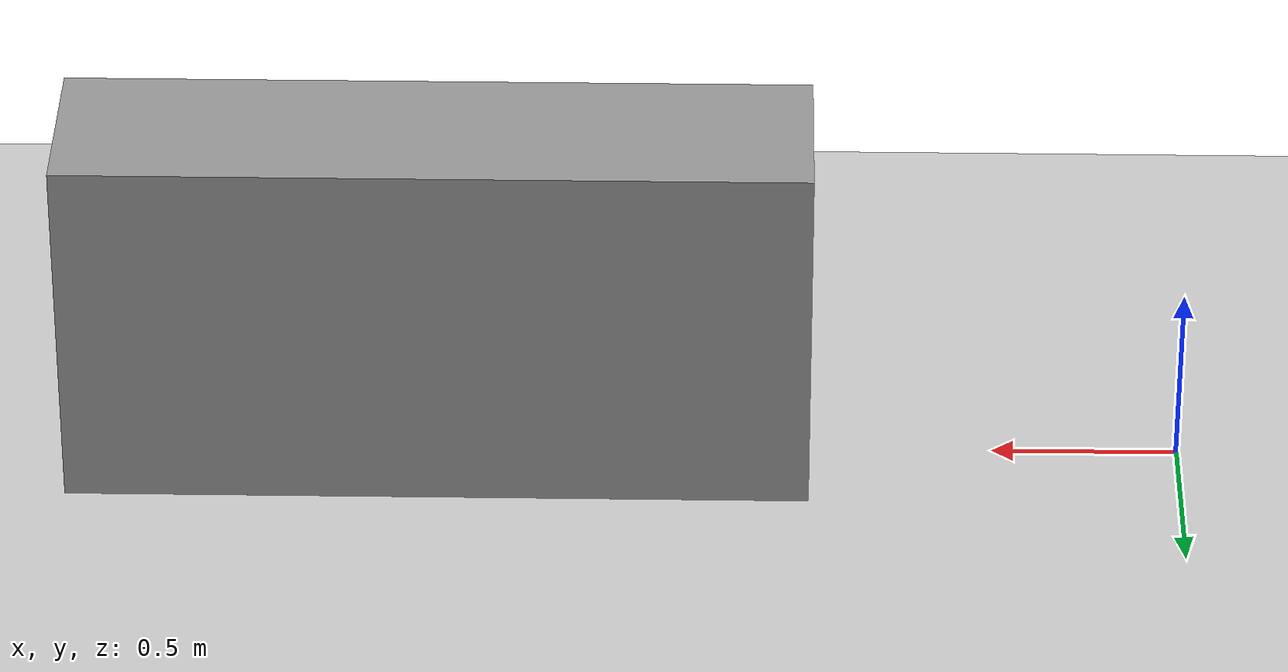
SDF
<?xml version="1.0" ?>
<sdf version="1.6">
  <world name="default">

    <!-- Плоскость -->
    <include>
      <uri>model://ground_plane</uri>
    </include>

    <include>
      <uri>model://sun</uri>
    </include>

    <!-- Стена -->
    <model name="wall">
      <static>true</static>
      <pose>2 0 0.5 0 0 0</pose>
      <link name="wall_link">
        <collision name="wall_collision">
          <geometry>
            <box>
              <size>2 0.5 1</size>
            </box>
          </geometry>
        </collision>
        <visual name="wall_visual">
          <geometry>
            <box>
              <size>2 0.5 1</size>
            </box>
          </geometry>
          <material>
            <script>
              <uri>file://media/materials/scripts/gazebo.material</uri>
              <name>Gazebo/Gray</name>
            </script>
          </material>
        </visual>
      </link>
    </model>

    <physics type="ode">
      <max_step_size>0.001</max_step_size>
      <real_time_update_rate>1000</real_time_update_rate>
    </physics>

    <gravity>0 0 -9.8</gravity>

  </world>
</sdf>
